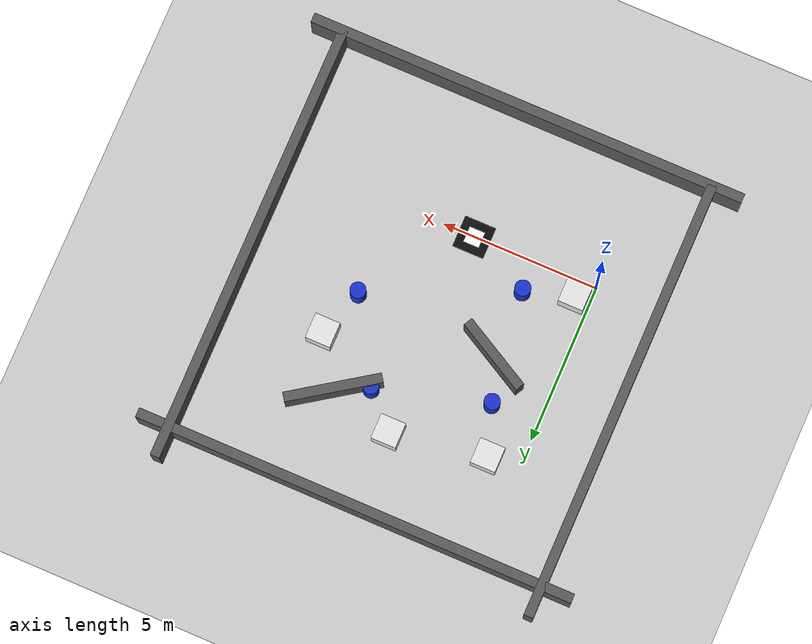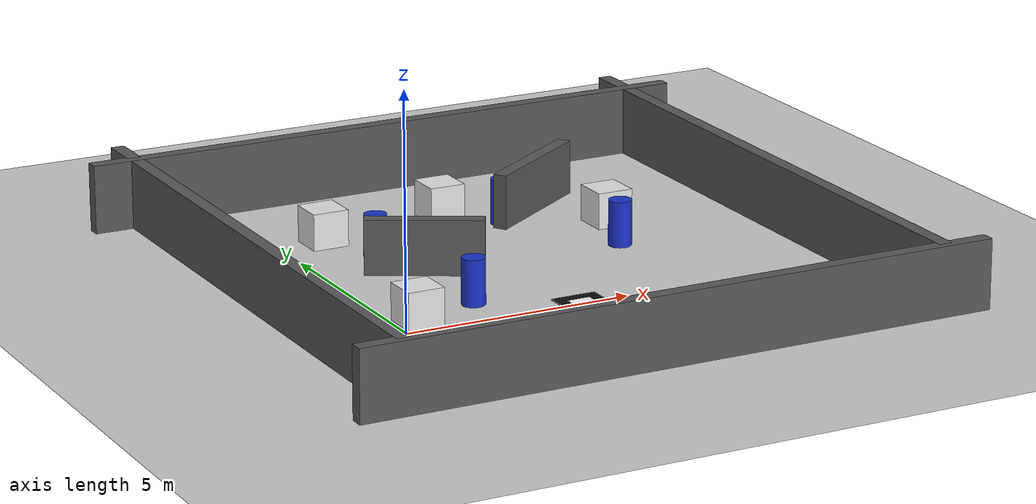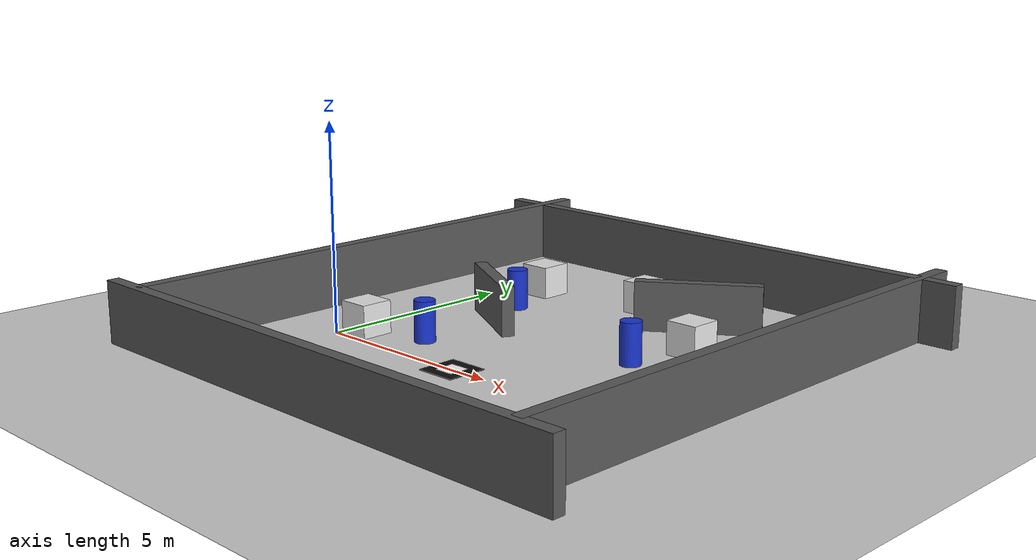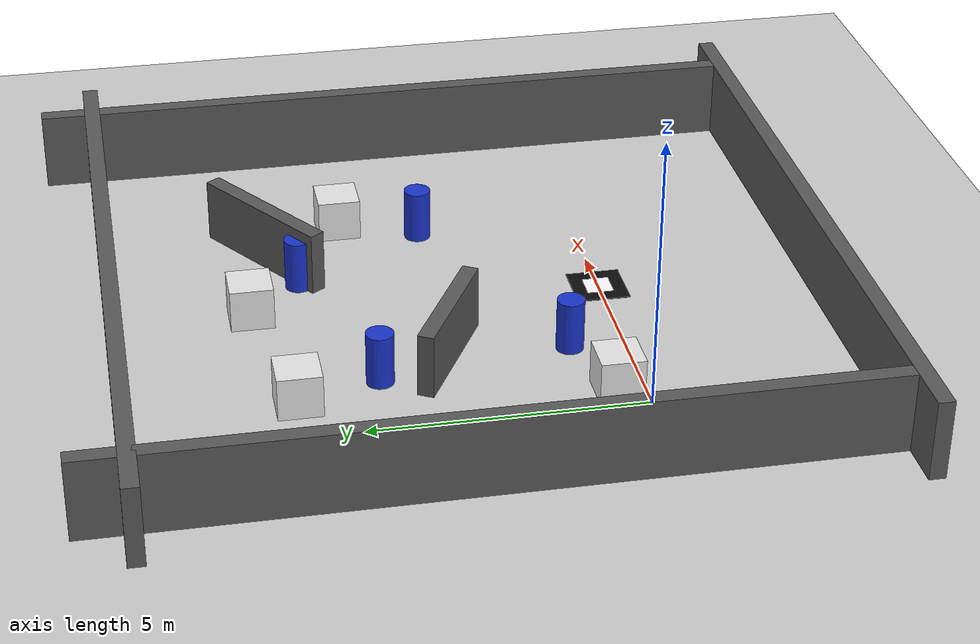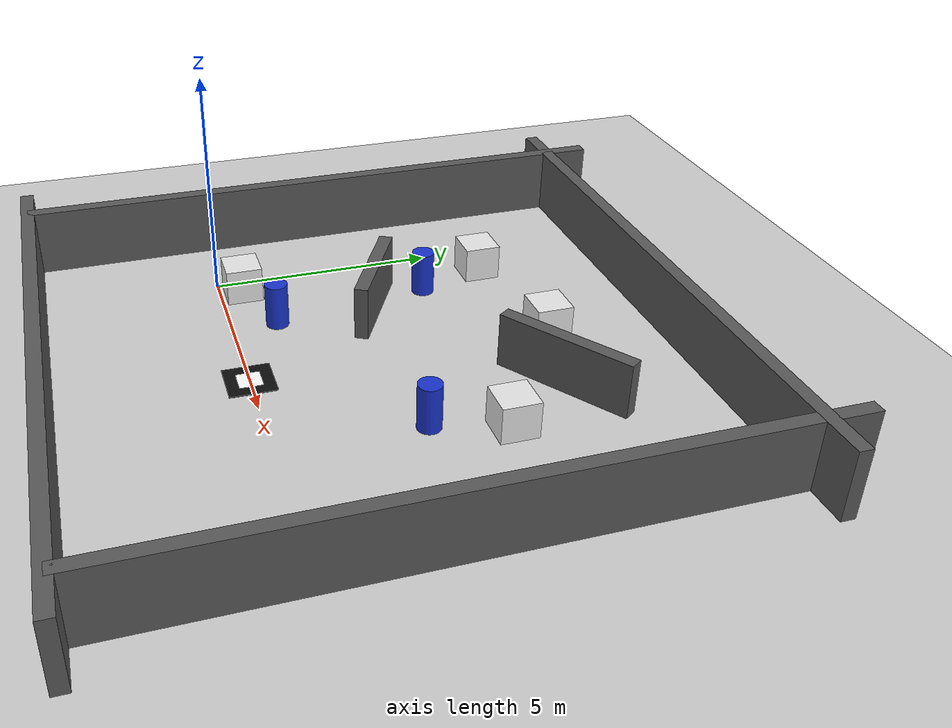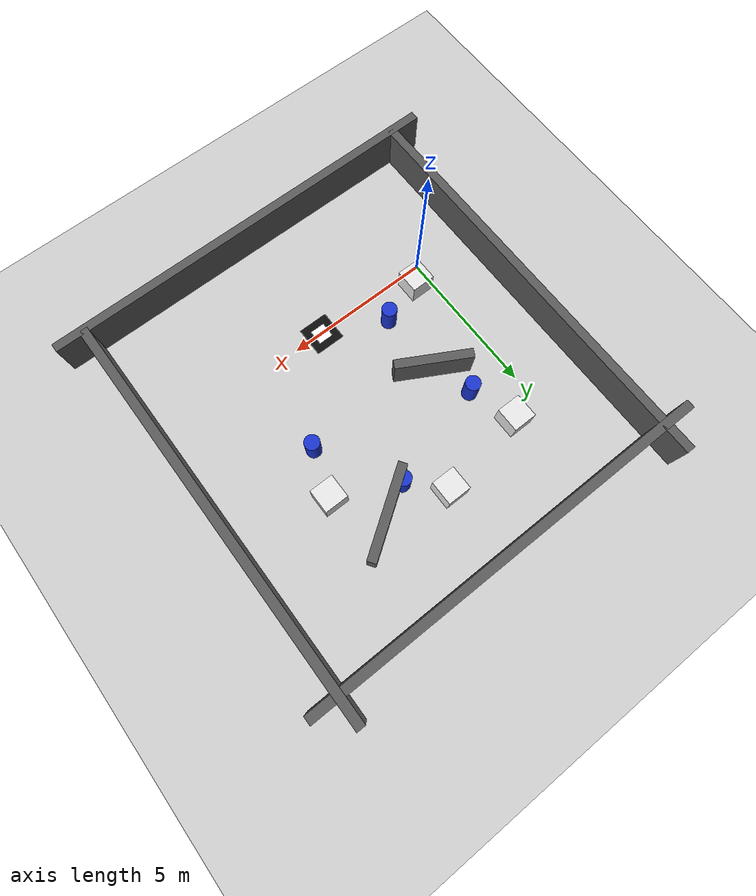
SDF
<?xml version="1.0" encoding="UTF-8"?>
<sdf version="1.9">
  <world name="precision_landing">
    <physics type="ode">
      <max_step_size>0.004</max_step_size>
      <real_time_factor>1.0</real_time_factor>
      <real_time_update_rate>250</real_time_update_rate>
    </physics>
    <plugin name="gz::sim::systems::Physics" filename="gz-sim-physics-system"/>
    <plugin name="gz::sim::systems::UserCommands" filename="gz-sim-user-commands-system"/>
    <plugin name="gz::sim::systems::SceneBroadcaster" filename="gz-sim-scene-broadcaster-system"/>
    <plugin name="gz::sim::systems::Contact" filename="gz-sim-contact-system"/>
    <plugin name="gz::sim::systems::Imu" filename="gz-sim-imu-system"/>
    <plugin name="gz::sim::systems::AirPressure" filename="gz-sim-air-pressure-system"/>
    <plugin name="gz::sim::systems::ApplyLinkWrench" filename="gz-sim-apply-link-wrench-system"/>
    <plugin name="gz::sim::systems::NavSat" filename="gz-sim-navsat-system"/>
    <plugin name="gz::sim::systems::Sensors" filename="gz-sim-sensors-system">
      <render_engine>ogre2</render_engine>
    </plugin>
    <gui fullscreen="false">
      <!-- 3D scene -->
      <plugin filename="MinimalScene" name="3D View">
        <gz-gui>
          <title>3D View</title>
          <property type="bool" key="showTitleBar">false</property>
          <property type="string" key="state">docked</property>
        </gz-gui>
        <engine>ogre2</engine>
        <scene>scene</scene>
        <ambient_light>0.4 0.4 0.4</ambient_light>
        <background_color>0.8 0.8 0.8</background_color>
        <camera_pose>-6 0 6 0 0.5 0</camera_pose>
        <camera_clip>
          <near>0.25</near>
          <far>25000</far>
        </camera_clip>
      </plugin>
      <!-- Plugins that add functionality to the scene -->
      <plugin filename="EntityContextMenuPlugin" name="Entity context menu">
        <gz-gui>
          <property key="state" type="string">floating</property>
          <property key="width" type="double">5</property>
          <property key="height" type="double">5</property>
          <property key="showTitleBar" type="bool">false</property>
        </gz-gui>
      </plugin>
      <plugin filename="GzSceneManager" name="Scene Manager">
        <gz-gui>
          <property key="resizable" type="bool">false</property>
          <property key="width" type="double">5</property>
          <property key="height" type="double">5</property>
          <property key="state" type="string">floating</property>
          <property key="showTitleBar" type="bool">false</property>
        </gz-gui>
      </plugin>
      <plugin filename="InteractiveViewControl" name="Interactive view control">
        <gz-gui>
          <property key="resizable" type="bool">false</property>
          <property key="width" type="double">5</property>
          <property key="height" type="double">5</property>
          <property key="state" type="string">floating</property>
          <property key="showTitleBar" type="bool">false</property>
        </gz-gui>
      </plugin>
      <plugin filename="CameraTracking" name="Camera Tracking">
        <gz-gui>
          <property key="resizable" type="bool">false</property>
          <property key="width" type="double">5</property>
          <property key="height" type="double">5</property>
          <property key="state" type="string">floating</property>
          <property key="showTitleBar" type="bool">false</property>
        </gz-gui>
      </plugin>
      <plugin filename="MarkerManager" name="Marker manager">
        <gz-gui>
          <property key="resizable" type="bool">false</property>
          <property key="width" type="double">5</property>
          <property key="height" type="double">5</property>
          <property key="state" type="string">floating</property>
          <property key="showTitleBar" type="bool">false</property>
        </gz-gui>
      </plugin>
      <plugin filename="SelectEntities" name="Select Entities">
        <gz-gui>
          <anchors target="Select entities">
            <line own="right" target="right"/>
            <line own="top" target="top"/>
          </anchors>
          <property key="resizable" type="bool">false</property>
          <property key="width" type="double">5</property>
          <property key="height" type="double">5</property>
          <property key="state" type="string">floating</property>
          <property key="showTitleBar" type="bool">false</property>
        </gz-gui>
      </plugin>
      <plugin filename="VisualizationCapabilities" name="Visualization Capabilities">
        <gz-gui>
          <property key="resizable" type="bool">false</property>
          <property key="width" type="double">5</property>
          <property key="height" type="double">5</property>
          <property key="state" type="string">floating</property>
          <property key="showTitleBar" type="bool">false</property>
        </gz-gui>
      </plugin>
      <plugin filename="Spawn" name="Spawn Entities">
        <gz-gui>
          <anchors target="Select entities">
            <line own="right" target="right"/>
            <line own="top" target="top"/>
          </anchors>
          <property key="resizable" type="bool">false</property>
          <property key="width" type="double">5</property>
          <property key="height" type="double">5</property>
          <property key="state" type="string">floating</property>
          <property key="showTitleBar" type="bool">false</property>
        </gz-gui>
      </plugin>
      <plugin name="World control" filename="WorldControl">
        <gz-gui>
          <title>World control</title>
          <property type="bool" key="showTitleBar">0</property>
          <property type="bool" key="resizable">0</property>
          <property type="double" key="height">72</property>
          <property type="double" key="width">121</property>
          <property type="double" key="z">1</property>
          <property type="string" key="state">floating</property>
          <anchors target="3D View">
            <line own="left" target="left"/>
            <line own="bottom" target="bottom"/>
          </anchors>
        </gz-gui>
        <play_pause>1</play_pause>
        <step>1</step>
        <start_paused>1</start_paused>
      </plugin>
      <plugin name="World stats" filename="WorldStats">
        <gz-gui>
          <title>World stats</title>
          <property type="bool" key="showTitleBar">0</property>
          <property type="bool" key="resizable">0</property>
          <property type="double" key="height">110</property>
          <property type="double" key="width">290</property>
          <property type="double" key="z">1</property>
          <property type="string" key="state">floating</property>
          <anchors target="3D View">
            <line own="right" target="right"/>
            <line own="bottom" target="bottom"/>
          </anchors>
        </gz-gui>
        <sim_time>1</sim_time>
        <real_time>1</real_time>
        <real_time_factor>1</real_time_factor>
        <iterations>1</iterations>
      </plugin>
      <plugin name="Entity tree" filename="EntityTree"/>
    </gui>
    <gravity>0 0 -9.8</gravity>
    <magnetic_field>6e-06 2.3e-05 -4.2e-05</magnetic_field>
    <atmosphere type="adiabatic"/>
    <scene>
      <grid>true</grid>
      <ambient>0.4 0.4 0.4 1</ambient>
      <background>0.7 0.7 0.7 1</background>
      <shadows>true</shadows>
    </scene>
    <model name="ground_plane">
      <static>true</static>
      <link name="link">
        <collision name="collision">
          <geometry>
            <plane>
              <normal>0 0 1</normal>
              <size>1 1</size>
            </plane>
          </geometry>
          <surface>
            <friction>
              <ode/>
            </friction>
            <bounce/>
            <contact/>
          </surface>
        </collision>
        <visual name="visual">
          <geometry>
            <plane>
              <normal>0 0 1</normal>
              <size>100 100</size>
            </plane>
          </geometry>
          <material>
            <ambient>0.8 0.8 0.8 1</ambient>
            <diffuse>0.8 0.8 0.8 1</diffuse>
            <specular>0.8 0.8 0.8 1</specular>
          </material>
        </visual>
        <pose>0 0 0 0 -0 0</pose>
        <inertial>
          <pose>0 0 0 0 -0 0</pose>
          <mass>1</mass>
          <inertia>
            <ixx>1</ixx>
            <ixy>0</ixy>
            <ixz>0</ixz>
            <iyy>1</iyy>
            <iyz>0</iyz>
            <izz>1</izz>
          </inertia>
        </inertial>
        <enable_wind>false</enable_wind>
      </link>
      <pose>0 0 0 0 -0 0</pose>
      <self_collide>false</self_collide>
    </model>
    <light name="sunUTC" type="directional">
      <pose>0 0 500 0 -0 0</pose>
      <cast_shadows>true</cast_shadows>
      <intensity>0.9</intensity>
      <direction>0.001 0.625 -0.78</direction>
      <diffuse>0.904 0.904 0.904 1</diffuse>
      <specular>0.271 0.271 0.271 1</specular>
      <attenuation>
        <range>2000</range>
        <linear>0</linear>
        <constant>1</constant>
        <quadratic>0</quadratic>
      </attenuation>
      <spot>
        <inner_angle>0</inner_angle>
        <outer_angle>0</outer_angle>
        <falloff>0</falloff>
      </spot>
    </light>
    <spherical_coordinates>
      <surface_model>EARTH_WGS84</surface_model>
      <world_frame_orientation>ENU</world_frame_orientation>
      <latitude_deg>47.397971057728974</latitude_deg>
      <longitude_deg> 8.546163739800146</longitude_deg>
      <elevation>0</elevation>
    </spherical_coordinates>

    <include>
      <uri>model://landing_pad</uri>
      <pose>4 0 0.01 0 0 0</pose>
    </include>

    <model name="wall_n">
      <static>true</static>
      <pose>4 9 0.75 0 0 0.0</pose>
      <link name="link">
        <visual name="visual">
          <geometry><box><size>14 0.3 1.5</size></box></geometry>
          <material><ambient>0.35 0.35 0.35 1</ambient><diffuse>0.35 0.35 0.35 1</diffuse><specular>0 0 0 1</specular></material>
        </visual>
        <collision name="collision">
          <geometry><box><size>14 0.3 1.5</size></box></geometry>
        </collision>
      </link>
    </model>

    <model name="wall_s">
      <static>true</static>
      <pose>4 -4 0.75 0 0 0.0</pose>
      <link name="link">
        <visual name="visual">
          <geometry><box><size>14 0.3 1.5</size></box></geometry>
          <material><ambient>0.35 0.35 0.35 1</ambient><diffuse>0.35 0.35 0.35 1</diffuse><specular>0 0 0 1</specular></material>
        </visual>
        <collision name="collision">
          <geometry><box><size>14 0.3 1.5</size></box></geometry>
        </collision>
      </link>
    </model>

    <model name="wall_w">
      <static>true</static>
      <pose>-2 3 0.75 0 0 0.0</pose>
      <link name="link">
        <visual name="visual">
          <geometry><box><size>0.3 14 1.5</size></box></geometry>
          <material><ambient>0.35 0.35 0.35 1</ambient><diffuse>0.35 0.35 0.35 1</diffuse><specular>0 0 0 1</specular></material>
        </visual>
        <collision name="collision">
          <geometry><box><size>0.3 14 1.5</size></box></geometry>
        </collision>
      </link>
    </model>

    <model name="wall_e">
      <static>true</static>
      <pose>10 3 0.75 0 0 0.0</pose>
      <link name="link">
        <visual name="visual">
          <geometry><box><size>0.3 14 1.5</size></box></geometry>
          <material><ambient>0.35 0.35 0.35 1</ambient><diffuse>0.35 0.35 0.35 1</diffuse><specular>0 0 0 1</specular></material>
        </visual>
        <collision name="collision">
          <geometry><box><size>0.3 14 1.5</size></box></geometry>
        </collision>
      </link>
    </model>

    <model name="seg_a">
      <static>true</static>
      <pose>6 6 0.6 0 0 0.6</pose>
      <link name="link">
        <visual name="visual">
          <geometry><box><size>3 0.3 1.2</size></box></geometry>
          <material><ambient>0.35 0.35 0.35 1</ambient><diffuse>0.35 0.35 0.35 1</diffuse><specular>0 0 0 1</specular></material>
        </visual>
        <collision name="collision">
          <geometry><box><size>3 0.3 1.2</size></box></geometry>
        </collision>
      </link>
    </model>

    <model name="seg_b">
      <static>true</static>
      <pose>2 3.2 0.6 0 0 -0.5</pose>
      <link name="link">
        <visual name="visual">
          <geometry><box><size>2.5 0.3 1.2</size></box></geometry>
          <material><ambient>0.35 0.35 0.35 1</ambient><diffuse>0.35 0.35 0.35 1</diffuse><specular>0 0 0 1</specular></material>
        </visual>
        <collision name="collision">
          <geometry><box><size>2.5 0.3 1.2</size></box></geometry>
        </collision>
      </link>
    </model>

    <model name="cube_0">
      <static>true</static>
      <pose>7 4.5 0.4 0 0 0.0</pose>
      <link name="link">
        <visual name="visual">
          <geometry><box><size>0.8 0.8 0.8</size></box></geometry>
          <material><ambient>0.9 0.9 0.9 1</ambient><diffuse>0.9 0.9 0.9 1</diffuse><specular>0 0 0 1</specular></material>
        </visual>
        <collision name="collision">
          <geometry><box><size>0.8 0.8 0.8</size></box></geometry>
        </collision>
      </link>
    </model>

    <model name="cube_1">
      <static>true</static>
      <pose>4 6.5 0.4 0 0 0.0</pose>
      <link name="link">
        <visual name="visual">
          <geometry><box><size>0.8 0.8 0.8</size></box></geometry>
          <material><ambient>0.9 0.9 0.9 1</ambient><diffuse>0.9 0.9 0.9 1</diffuse><specular>0 0 0 1</specular></material>
        </visual>
        <collision name="collision">
          <geometry><box><size>0.8 0.8 0.8</size></box></geometry>
        </collision>
      </link>
    </model>

    <model name="cube_2">
      <static>true</static>
      <pose>1 6 0.4 0 0 0.0</pose>
      <link name="link">
        <visual name="visual">
          <geometry><box><size>0.8 0.8 0.8</size></box></geometry>
          <material><ambient>0.9 0.9 0.9 1</ambient><diffuse>0.9 0.9 0.9 1</diffuse><specular>0 0 0 1</specular></material>
        </visual>
        <collision name="collision">
          <geometry><box><size>0.8 0.8 0.8</size></box></geometry>
        </collision>
      </link>
    </model>

    <model name="cube_3">
      <static>true</static>
      <pose>0.5 0.5 0.4 0 0 0.0</pose>
      <link name="link">
        <visual name="visual">
          <geometry><box><size>0.8 0.8 0.8</size></box></geometry>
          <material><ambient>0.9 0.9 0.9 1</ambient><diffuse>0.9 0.9 0.9 1</diffuse><specular>0 0 0 1</specular></material>
        </visual>
        <collision name="collision">
          <geometry><box><size>0.8 0.8 0.8</size></box></geometry>
        </collision>
      </link>
    </model>

    <model name="cyl_0">
      <static>true</static>
      <pose>6.5 3 0.5 0 0 0</pose>
      <link name="link">
        <visual name="visual">
          <geometry><cylinder><radius>0.25</radius><length>1.0</length></cylinder></geometry>
          <material><ambient>0.1 0.2 0.8 1</ambient><diffuse>0.1 0.2 0.8 1</diffuse><specular>0 0 0 1</specular></material>
        </visual>
        <collision name="collision">
          <geometry><cylinder><radius>0.25</radius><length>1.0</length></cylinder></geometry>
        </collision>
      </link>
    </model>

    <model name="cyl_1">
      <static>true</static>
      <pose>5 5.5 0.5 0 0 0</pose>
      <link name="link">
        <visual name="visual">
          <geometry><cylinder><radius>0.25</radius><length>1.0</length></cylinder></geometry>
          <material><ambient>0.1 0.2 0.8 1</ambient><diffuse>0.1 0.2 0.8 1</diffuse><specular>0 0 0 1</specular></material>
        </visual>
        <collision name="collision">
          <geometry><cylinder><radius>0.25</radius><length>1.0</length></cylinder></geometry>
        </collision>
      </link>
    </model>

    <model name="cyl_2">
      <static>true</static>
      <pose>1.5 4.5 0.5 0 0 0</pose>
      <link name="link">
        <visual name="visual">
          <geometry><cylinder><radius>0.25</radius><length>1.0</length></cylinder></geometry>
          <material><ambient>0.1 0.2 0.8 1</ambient><diffuse>0.1 0.2 0.8 1</diffuse><specular>0 0 0 1</specular></material>
        </visual>
        <collision name="collision">
          <geometry><cylinder><radius>0.25</radius><length>1.0</length></cylinder></geometry>
        </collision>
      </link>
    </model>

    <model name="cyl_3">
      <static>true</static>
      <pose>2 1 0.5 0 0 0</pose>
      <link name="link">
        <visual name="visual">
          <geometry><cylinder><radius>0.25</radius><length>1.0</length></cylinder></geometry>
          <material><ambient>0.1 0.2 0.8 1</ambient><diffuse>0.1 0.2 0.8 1</diffuse><specular>0 0 0 1</specular></material>
        </visual>
        <collision name="collision">
          <geometry><cylinder><radius>0.25</radius><length>1.0</length></cylinder></geometry>
        </collision>
      </link>
    </model></world>
</sdf>

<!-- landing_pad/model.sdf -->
<sdf version="1.8">
  <model name="landing_pad">
    <static>true</static>
    <link name="base_link">
      <!-- Dark base pad -->
      <visual name="pad_visual">
        <geometry>
          <box>
            <size>1.0 1.0 0.02</size>
          </box>
        </geometry>
        <material>
          <ambient>0.05 0.05 0.05 1</ambient>
          <diffuse>0.05 0.05 0.05 1</diffuse>
          <specular>0.0 0.0 0.0 1</specular>
        </material>
      </visual>
      <!-- White marker area on top -->
      <visual name="marker_visual">
        <pose>0 0 0.011 0 0 0</pose>
        <geometry>
          <box>
            <size>0.5 0.5 0.002</size>
          </box>
        </geometry>
        <material>
          <ambient>1 1 1 1</ambient>
          <diffuse>1 1 1 1</diffuse>
          <specular>0 0 0 1</specular>
          <pbr>
            <metal>
              <albedo_map>materials/textures/aruco_0.png</albedo_map>
            </metal>
          </pbr>
        </material>
      </visual>
      <collision name="pad_collision">
        <geometry>
          <box>
            <size>1.0 1.0 0.02</size>
          </box>
        </geometry>
      </collision>
    </link>
  </model>
</sdf>
